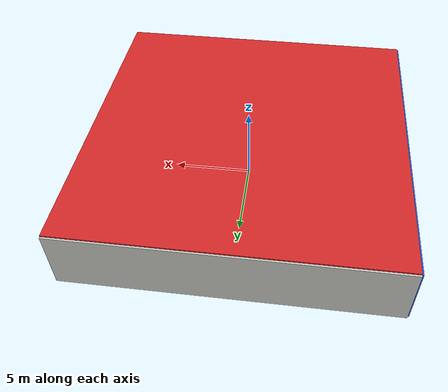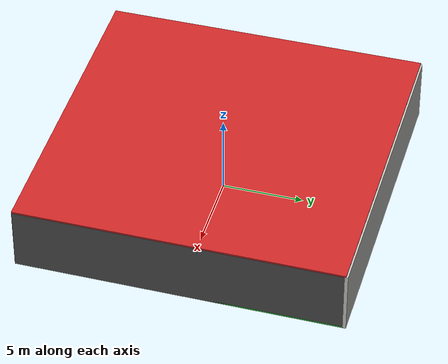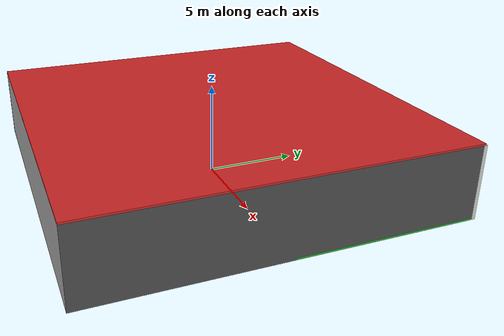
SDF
<sdf version="1.4">
 <world name="default">
  <physics type="ode">
   <max_step_size>0.001</max_step_size>
   <real_time_factor>1</real_time_factor>
   <real_time_update_rate>1000</real_time_update_rate>
   <gravity>0 0 -9.8</gravity>
  </physics>
  <scene><ambient>0.4 0.4 0.4 1</ambient><background>0.7 0.7 0.7 1</background><shadows>1</shadows></scene>
  <model name="Surrounding">
   <static>1</static>
   <link name="Ceiling">
    <collision name="Ceiling_Collision"><geometry><box><size>20 20 0.1</size></box></geometry></collision>
    <visual name="Ceiling_Visual">
     <geometry><box><size>20 20 0.1</size></box></geometry>
     <material>
      <script><uri>file://media/materials/scripts/gazebo.material</uri><name>Gazebo/RedBright</name></script>
     </material>
    </visual>
    <pose>0 0 4.05 0 0 0</pose>
   </link>
   <link name="Wall_South">
    <collision name="Wall_South_Collision">
     <geometry><box><size>20 0 4</size></box></geometry>
     <pose>0 0 2 0 -0 0</pose>
    </collision>
    <visual name="Wall_South_Visual">
     <pose>0 0 2 0 -0 0</pose>
     <geometry><box><size>20 0 4</size></box></geometry>
     <material>
      <script><uri>file://media/materials/scripts/gazebo.material</uri><name>Gazebo/PioneerBody</name></script>
     </material>
    </visual>
    <velocity_decay><linear>0</linear><angular>0</angular></velocity_decay>
    <pose>0 -10 0 0 -0 0</pose>
   </link>
   <link name="Wall_East">
    <collision name="Wall_21_Collision">
     <geometry><box><size>20 0 4</size></box></geometry>
     <pose>0 0 2 0 -0 0</pose>
    </collision>
    <visual name="Wall_21_Visual">
     <pose>0 0 2 0 -0 0</pose>
     <geometry><box><size>20 0 4</size></box></geometry>
     <material>
      <script><uri>file://media/materials/scripts/gazebo.material</uri><name>Gazebo/DarkGrey</name></script>
     </material>
    </visual>
    <velocity_decay><linear>0</linear><angular>0</angular></velocity_decay>
    <pose>10 0 0 0 -0 1.5708</pose>
   </link>
   <link name="Wall_North">
    <collision name="Wall_22_Collision">
     <geometry><box><size>20 0.2 4</size></box></geometry>
     <pose>0 0 2 0 -0 0</pose>
    </collision>
    <visual name="Wall_22_Visual">
     <pose>0 0 2 0 -0 0</pose>
     <geometry><box><size>20 0.2 4</size></box></geometry>
     <material>
      <script><uri>file://media/materials/scripts/gazebo.material</uri><name>Gazebo/CeilingTiled</name></script>
     </material>
    </visual>
    <velocity_decay><linear>0</linear><angular>0</angular></velocity_decay>
    <pose>0 10 0 0 -0 0</pose>
   </link>
   <link name="Wall_West">
    <collision name="Wall_23_Collision">
     <geometry><box><size>20 0.2 4</size></box></geometry>
     <pose>0 0 2 0 -0 0</pose>
    </collision>
    <visual name="Wall_23_Visual">
     <pose>0 0 2 0 -0 0</pose>
     <geometry><box><size>20 0.2 4</size></box></geometry>
     <material>
      <script><uri>file://media/materials/scripts/gazebo.material</uri><name>Gazebo/BlueLaser</name></script>
     </material>
    </visual>
    <velocity_decay><linear>0</linear><angular>0</angular></velocity_decay>
    <pose>-10 0 0 0 0 -1.5708</pose>
   </link>
   <link name="Ground_link">
    <collision name="collision">
     <pose>0 0 .05 0 -0 0</pose>
     <geometry><box><size>20 20 0.1</size></box></geometry>
    </collision>
    <visual name="visual">
     <pose>0 0 .05 0 -0 0</pose>
     <geometry><box><size>20 20 0.1</size></box></geometry>
     <material>
      <script><uri>file://media/materials/scripts/gazebo.material</uri><name>Gazebo/Green</name></script>
     </material>
    </visual>
   </link>
   <static>1</static>
  </model>
  <spherical_coordinates>
   <surface_model>EARTH_WGS84</surface_model>
   <latitude_deg>0</latitude_deg>
   <longitude_deg>0</longitude_deg>
   <elevation>0</elevation>
   <heading_deg>0</heading_deg>
  </spherical_coordinates>
  <light name="lightball_0" type="diffuse">
   <diffuse>0.8 0.8 0.8 1</diffuse>
   <specular>0.2 0.2 0.2 1</specular>
   <attenuation>
    <range>100</range>
    <constant>0.7</constant>
    <linear>0.01</linear>
    <quadratic>0.001</quadratic>
   </attenuation>
   <direction>-0.5 0.1 -0.9</direction>
   <pose>5.48310318856 -7.59659172637 1.88630611849 0 0 0</pose>
  </light>
  <light name="lightball_1" type="diffuse">
   <diffuse>0.8 0.8 0.8 1</diffuse>
   <specular>0.2 0.2 0.2 1</specular>
   <attenuation>
    <range>100</range>
    <constant>0.7</constant>
    <linear>0.01</linear>
    <quadratic>0.001</quadratic>
   </attenuation>
   <direction>-0.5 0.1 -0.9</direction>
   <pose>5.33529300666 2.90594685469 3.8025933506 0 0 0</pose>
  </light>
  <light name="lightball_2" type="diffuse">
   <diffuse>0.8 0.8 0.8 1</diffuse>
   <specular>0.2 0.2 0.2 1</specular>
   <attenuation>
    <range>100</range>
    <constant>0.7</constant>
    <linear>0.01</linear>
    <quadratic>0.001</quadratic>
   </attenuation>
   <direction>-0.5 0.1 -0.9</direction>
   <pose>-8.36959085331 8.77960275372 1.80627242856 0 0 0</pose>
  </light>
  <light name="lightball_3" type="diffuse">
   <diffuse>0.8 0.8 0.8 1</diffuse>
   <specular>0.2 0.2 0.2 1</specular>
   <attenuation>
    <range>100</range>
    <constant>0.7</constant>
    <linear>0.01</linear>
    <quadratic>0.001</quadratic>
   </attenuation>
   <direction>-0.5 0.1 -0.9</direction>
   <pose>-6.47163811715 7.2045481741 0.774589408241 0 0 0</pose>
  </light>
  <light name="lightball_4" type="diffuse">
   <diffuse>0.8 0.8 0.8 1</diffuse>
   <specular>0.2 0.2 0.2 1</specular>
   <attenuation>
    <range>100</range>
    <constant>0.7</constant>
    <linear>0.01</linear>
    <quadratic>0.001</quadratic>
   </attenuation>
   <direction>-0.5 0.1 -0.9</direction>
   <pose>8.3343847232 -6.17545987115 1.74802599416 0 0 0</pose>
  </light>
  <light name="lightball_5" type="diffuse">
   <diffuse>0.8 0.8 0.8 1</diffuse>
   <specular>0.2 0.2 0.2 1</specular>
   <attenuation>
    <range>100</range>
    <constant>0.7</constant>
    <linear>0.01</linear>
    <quadratic>0.001</quadratic>
   </attenuation>
   <direction>-0.5 0.1 -0.9</direction>
   <pose>-5.94959864522 -1.9784456668 1.99210653046 0 0 0</pose>
  </light>
  <light name="lightball_6" type="diffuse">
   <diffuse>0.8 0.8 0.8 1</diffuse>
   <specular>0.2 0.2 0.2 1</specular>
   <attenuation>
    <range>100</range>
    <constant>0.7</constant>
    <linear>0.01</linear>
    <quadratic>0.001</quadratic>
   </attenuation>
   <direction>-0.5 0.1 -0.9</direction>
   <pose>-5.611924657 -4.04256522772 3.20104358544 0 0 0</pose>
  </light>
  <light name="lightball_7" type="diffuse">
   <diffuse>0.8 0.8 0.8 1</diffuse>
   <specular>0.2 0.2 0.2 1</specular>
   <attenuation>
    <range>100</range>
    <constant>0.7</constant>
    <linear>0.01</linear>
    <quadratic>0.001</quadratic>
   </attenuation>
   <direction>-0.5 0.1 -0.9</direction>
   <pose>4.53875574646 -6.90618780922 2.91136793368 0 0 0</pose>
  </light>
  <light name="lightball_8" type="diffuse">
   <diffuse>0.8 0.8 0.8 1</diffuse>
   <specular>0.2 0.2 0.2 1</specular>
   <attenuation>
    <range>100</range>
    <constant>0.7</constant>
    <linear>0.01</linear>
    <quadratic>0.001</quadratic>
   </attenuation>
   <direction>-0.5 0.1 -0.9</direction>
   <pose>-1.17928064644 -9.24174052018 3.10143890109 0 0 0</pose>
  </light>
  <include>
   <uri>model://construction_cone</uri>
   <pose>-3.88415365437 0.752058960016 0 0 0 1.87694181695</pose>
  </include>
  <include>
   <uri>model://construction_cone</uri>
   <pose>-3.98034366127 7.11047351858 0 0 0 1.7637337551</pose>
  </include>
  <include><uri>model://cabinet</uri><pose>-2.17468055677 -7.12812647103 0 0 0 2.74582137387</pose></include>
  <include><uri>model://cabinet</uri><pose>-2.16438588742 0.943467869142 0 0 0 2.43954586897</pose></include>
  <include><uri>model://cabinet</uri><pose>2.03941400683 7.21157318983 0 0 0 1.02247352157</pose></include>
  <include>
   <uri>model://textured_shapes</uri>
   <pose>4.07482934287 -3.72800229829 0 0 0 1.54116347501</pose>
  </include>
  <include><uri>model://cabinet</uri><pose>7.94971186957 -7.23156972781 0 0 0 0.0284341339415</pose></include>
  <include><uri>model://cabinet</uri><pose>7.08192510082 4.99351522313 0 0 0 0.604229253346</pose></include>
 </world>
</sdf>

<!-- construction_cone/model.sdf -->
<sdf version="1.5">
  <model name="Construction Cone">
    <link name="link">
      <collision name="collision">
        <geometry>
          <mesh>
            <scale>10 10 10</scale>
            <uri>file://isr-testbed/construction_cone/meshes/construction_cone.dae</uri>
          </mesh>
        </geometry>
      </collision>
      <visual name="visual">
        <geometry>
          <mesh>
            <scale>10 10 10</scale>
            <uri>file://isr-testbed/construction_cone/meshes/construction_cone.dae</uri>
          </mesh>
        </geometry>
      </visual>
    </link>
  </model>
</sdf>

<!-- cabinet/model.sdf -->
<sdf version="1.5">
  <model name="cabinet">
    <static>true</static>
    <link name="cabinet_bottom_plate">
      <inertial>
        <pose>0 0 -1 0 0 0</pose>
        <inertia>
          <ixx>2.050000</ixx>
          <ixy>0</ixy>
          <ixz>0</ixz>
          <iyy>2.050000</iyy>
          <iyz>0</iyz>
          <izz>2.050000</izz>
        </inertia>
        <mass>25.000000</mass>
      </inertial>
      <collision name="cabinet_bottom_plate_geom">
        <pose>0 0 0.010000 0 0 0</pose>
        <geometry>
          <box>
            <size>0.450000 0.450000 0.020000</size>
          </box>
        </geometry>
      </collision>
      <visual name="cabinet_bottom_plate_geom_visual">
        <pose>0 0 0.010000 0 0 0</pose>
        <geometry>
          <box>
            <size>0.450000 0.450000 0.020000</size>
          </box>
        </geometry>
        <material>
          <script>
            <uri>model://media/materials/scripts/gazebo.material</uri>
            <name>Gazebo/Wood</name>
          </script>
        </material>
      </visual>
      <collision name="cabinet_bottom_plate_geom_cabinet_back_plate">
        <pose>0.235000 0 0.510000 0 0 0</pose>
        <geometry>
          <box>
            <size>0.020000 0.450000 1.020000</size>
          </box>
        </geometry>
      </collision>
      <visual name="cabinet_bottom_plate_geom_cabinet_back_plate_visual">
        <pose>0.235000 0 0.510000 0 0 0</pose>
        <geometry>
          <box>
            <size>0.020000 0.450000 1.020000</size>
          </box>
        </geometry>
        <material>
          <script>
            <uri>model://media/materials/scripts/gazebo.material</uri>
            <name>Gazebo/Wood</name>
          </script>
        </material>
      </visual>
      <collision name="cabinet_bottom_plate_geom_cabinet_left_plate">
        <pose>0 0.235000 0.510000 0 0 0</pose>
        <geometry>
          <box>
            <size>0.450000 0.020000 1.020000</size>
          </box>
        </geometry>
      </collision>
      <visual name="cabinet_bottom_plate_geom_cabinet_left_plate_visual">
        <pose>0 0.235000 0.510000 0 0 0</pose>
        <geometry>
          <box>
            <size>0.450000 0.020000 1.020000</size>
          </box>
        </geometry>
        <material>
          <script>
            <uri>model://media/materials/scripts/gazebo.material</uri>
            <name>Gazebo/Wood</name>
          </script>
        </material>
      </visual>
      <collision name="cabinet_bottom_plate_geom_cabinet_middle_plate">
        <pose>0 0 0.510000 0 0 0</pose>
        <geometry>
          <box>
            <size>0.450000 0.450000 0.020000</size>
          </box>
        </geometry>
      </collision>
      <visual name="cabinet_bottom_plate_geom_cabinet_middle_plate_visual">
        <pose>0 0 0.510000 0 0 0</pose>
        <geometry>
          <box>
            <size>0.450000 0.450000 0.020000</size>
          </box>
        </geometry>
        <material>
          <script>
            <uri>model://media/materials/scripts/gazebo.material</uri>
            <name>Gazebo/Wood</name>
          </script>
        </material>
      </visual>
      <collision name="cabinet_bottom_plate_geom_cabinet_right_plate">
        <pose>0 -0.235000 0.510000 0 0 0</pose>
        <geometry>
          <box>
            <size>0.450000 0.020000 1.020000</size>
          </box>
        </geometry>
      </collision>
      <visual name="cabinet_bottom_plate_geom_cabinet_right_plate_visual">
        <pose>0 -0.235000 0.510000 0 0 0</pose>
        <geometry>
          <box>
            <size>0.450000 0.020000 1.020000</size>
          </box>
        </geometry>
        <material>
          <script>
            <uri>model://media/materials/scripts/gazebo.material</uri>
            <name>Gazebo/Wood</name>
          </script>
        </material>
      </visual>
      <collision name="cabinet_bottom_plate_geom_cabinet_top_plate">
        <pose>0 0 1.010000 0 0 0</pose>
        <geometry>
          <box>
            <size>0.450000 0.450000 0.020000</size>
          </box>
        </geometry>
      </collision>
      <visual name="cabinet_bottom_plate_geom_cabinet_top_plate_visual">
        <pose>0 0 1.010000 0 0 0</pose>
        <geometry>
          <box>
            <size>0.450000 0.450000 0.020000</size>
          </box>
        </geometry>
        <material>
          <script>
            <uri>model://media/materials/scripts/gazebo.material</uri>
            <name>Gazebo/Wood</name>
          </script>
        </material>
      </visual>
    </link>
  </model>
</sdf>

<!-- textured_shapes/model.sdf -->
<sdf version="1.6">
  <model name="textured_shapes">
    <pose>0 0 0.5 0 0 0</pose>
    <link name="box">
      <pose>0 -1.5 0 0 0 0</pose>
      <collision name="collision">
        <geometry>
          <box>
            <size>1 1 1</size>
          </box>
        </geometry>
      </collision>
      <visual name="visual">
        <geometry>
          <box>
            <size>1 1 1</size>
          </box>
        </geometry>
        <material>
          <script>
            <uri>model://../model_source/models/textured_shapes/materials/scripts</uri>
            <uri>model://../model_source/models/textured_shapes/materials/textures</uri>
            <name>TexturedShape/Squares</name>
          </script>
        </material>
      </visual>
    </link>
    <link name="sphere">
      <collision name="collision">
        <geometry>
          <sphere>
            <radius>0.5</radius>
          </sphere>
        </geometry>
      </collision>
      <visual name="visual">
        <geometry>
          <sphere>
            <radius>0.5</radius>
          </sphere>
        </geometry>
        <material>
          <script>
            <uri>model://../model_source/models/textured_shapes/materials/scripts</uri>
            <uri>model://../model_source/models/textured_shapes/materials/textures</uri>
            <name>TexturedShape/Squares</name>
          </script>
        </material>
      </visual>
    </link>
    <link name="cylinder">
      <pose>0 1.5 0 0 0 0</pose>
      <collision name="collision">
        <geometry>
          <cylinder>
            <radius>0.5</radius>
            <length>1</length>
          </cylinder>
        </geometry>
      </collision>
      <visual name="visual">
        <geometry>
          <cylinder>
            <radius>0.5</radius>
            <length>1</length>
          </cylinder>
        </geometry>
        <material>
          <script>
            <uri>model://../model_source/models/textured_shapes/materials/scripts</uri>
            <uri>model://../model_source/models/textured_shapes/materials/textures</uri>
            <name>TexturedShape/Squares</name>
          </script>
        </material>
      </visual>
    </link>
  </model>
</sdf>
